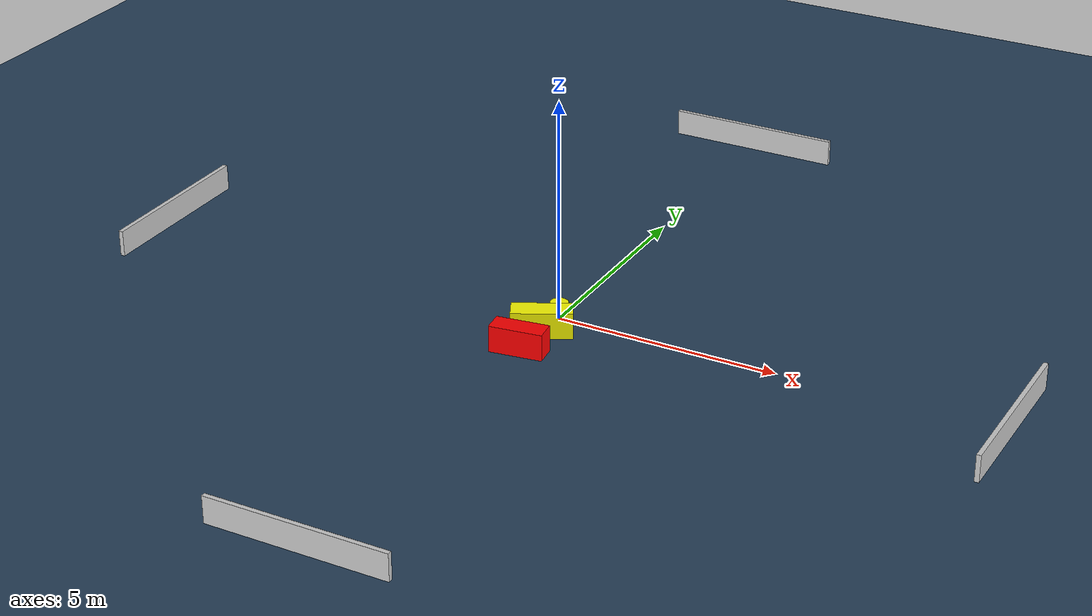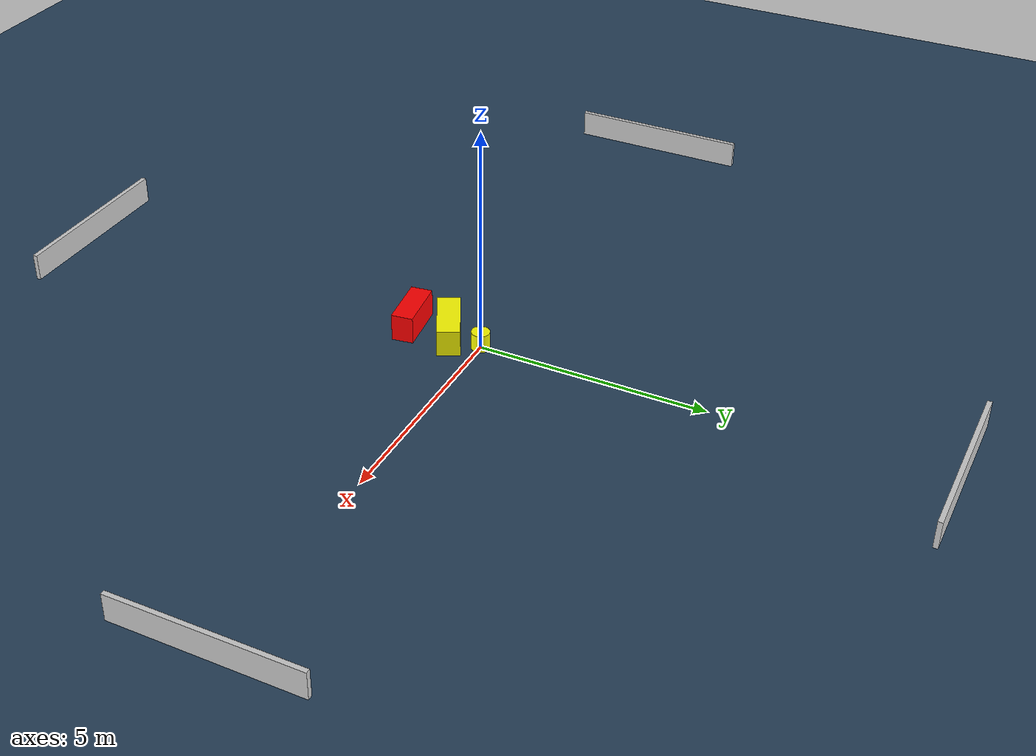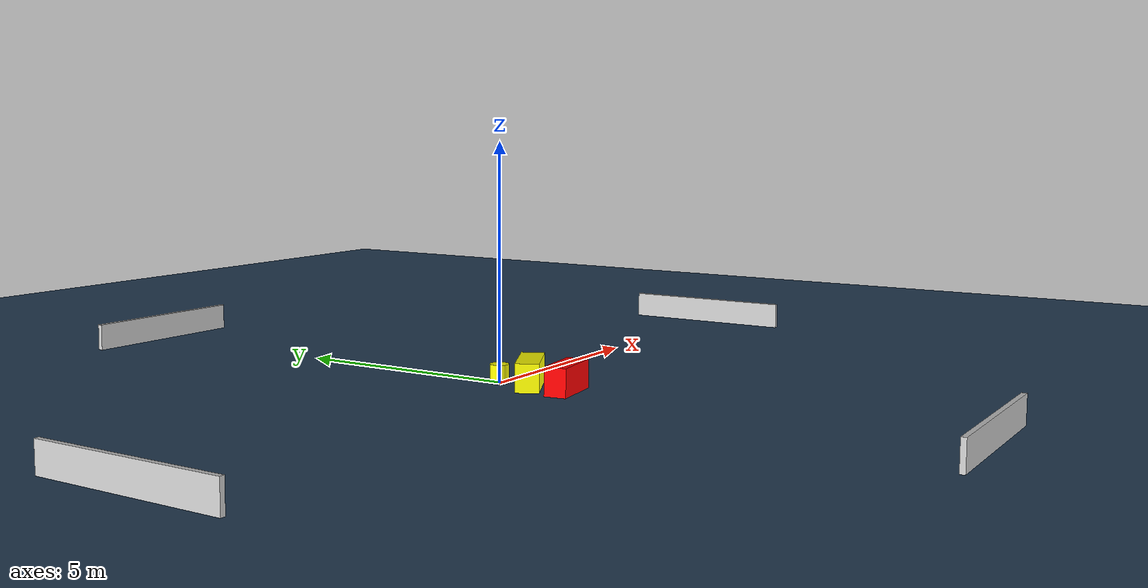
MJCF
<?xml version="1.0" ?>
<mujoco model="generated_environment">
  <option timestep="0.01" integrator="RK4" cone="elliptic"/>
  <default>
    <geom density="1"/>
  </default>
  <asset>
    <texture builtin="gradient" height="3072" name="skybox" rgb1="0.3 0.5 0.7" rgb2="0 0 0" type="skybox" width="512"/>
    <texture builtin="checker" height="300" name="groundplane" rgb1="0.2 0.3 0.4" rgb2="0.1 0.2 0.3" type="2d" width="300"/>
    <material name="groundplane" reflectance="0.2" texrepeat="5 5" texture="groundplane"/>
  </asset>
  <worldbody>
    <light dir="0 0 -1" directional="true" pos="0 0 1.5"/>
    <geom condim="3" friction="0.5 0.005 0.001" material="groundplane" name="floor" pos="0 0 0" size="0 0 0.05" type="plane"/>
    <body name="walls">
      <geom name="wall_1" condim="4" pos="-10.0 0.0 0.3" rgba="0.800000011920929 0.800000011920929 0.800000011920929 1.0" size="0.05 2.0 0.3" type="box"/>
      <geom name="wall_2" condim="4" pos="10.0 0.0 0.3" rgba="0.800000011920929 0.800000011920929 0.800000011920929 1.0" size="0.05 2.0 0.3" type="box"/>
      <geom name="wall_3" condim="4" pos="0.0 -10.0 0.3" rgba="0.800000011920929 0.800000011920929 0.800000011920929 1.0" size="2.0 0.05 0.3" type="box"/>
      <geom name="wall_4" condim="4" pos="0.0 10.0 0.3" rgba="0.800000011920929 0.800000011920929 0.800000011920929 1.0" size="2.0 0.05 0.3" type="box"/>
    </body>
    <body name="robot">
      <joint name="joint_x" type="slide" pos="0 0 0" axis="1 0 0"/>
      <joint name="joint_y" type="slide" pos="0 0 0" axis="0 1 0"/>
      <geom name="robot" type="cylinder" pos="0.0 0.0 0.2" size="0.2 0.2 0.0" mass="5.0" friction="1.0 0.005 0.0001" condim="4" rgba="1.0 1.0 0.0 1.0"/>
    </body>
    <body name="obstacle_1_movable">
      <geom name="obstacle_1_movable" condim="4" pos="-0.011221386721410568 -0.7537657539930798 0.3" euler="0 0 116.85397679663512" friction="0.0 0.005 0.001" rgba="1.0 1.0 0.0 1.0" size="0.2467783324490875 0.6570525877513278 0.3" type="box" mass="0.1"/>
      <joint type="free"/>
    </body>
    <body name="obstacle_2_static">
      <geom name="obstacle_2_static" condim="4" pos="-0.058325516992685414 -1.6509985088601316 0.3" euler="0 0 7.586172608054347" friction="0.0 0.005 0.001" rgba="1.0 0.0 0.0 1.0" size="0.5885331367264843 0.2358232492597404 0.3" type="box"/>
    </body>
  </worldbody>
  <actuator>
    <motor name="actuator_x" joint="joint_x" gear="1" ctrlrange="-1 1"/>
    <motor name="actuator_y" joint="joint_y" gear="1" ctrlrange="-1 1"/>
  </actuator>
</mujoco>
